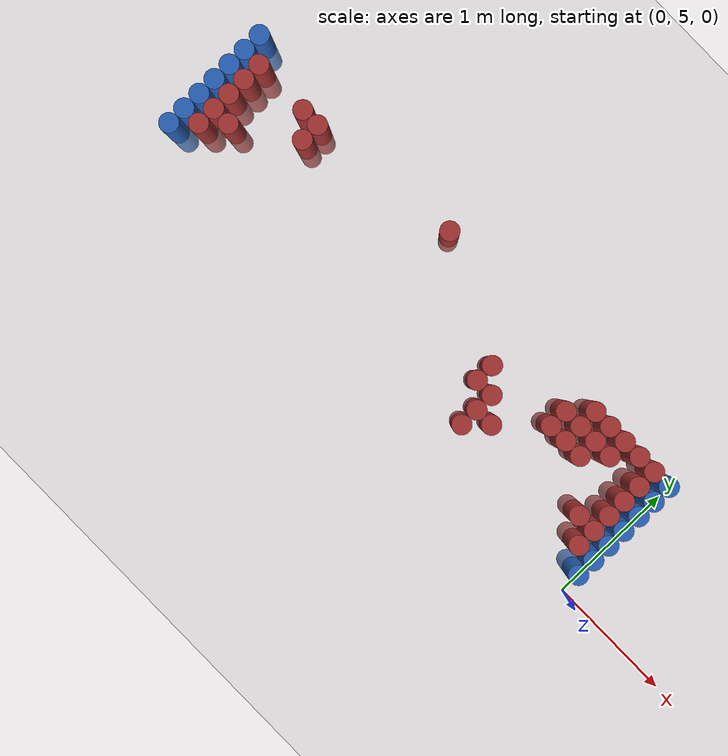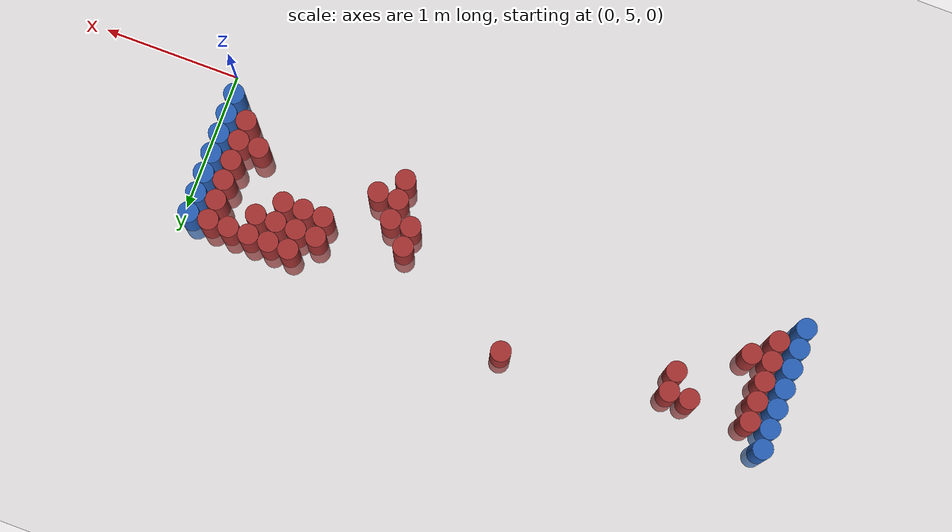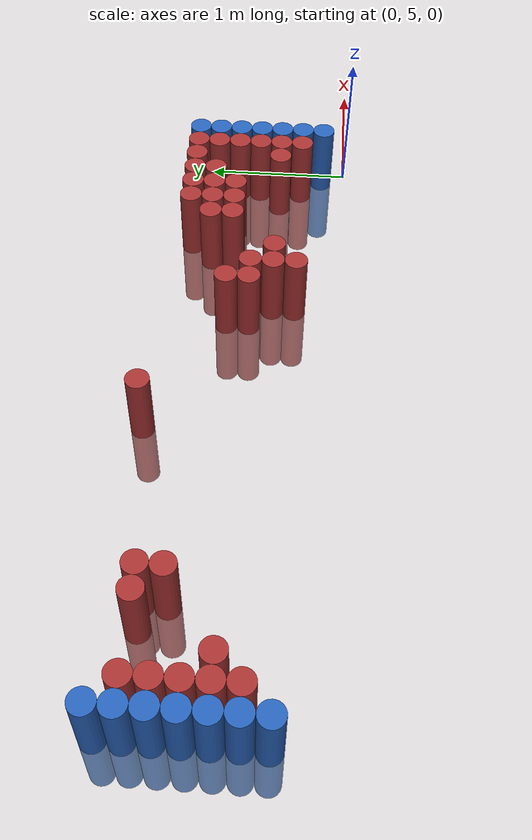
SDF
<sdf version="1.6">
 <world name="default">
  <model name="ground_plane">
   <static>1</static>
   <link name="link">
    <collision name="collision">
     <geometry><plane><normal>0 0 1</normal><size>100 100</size></plane></geometry>
     <surface><friction><ode><mu>100</mu><mu2>50</mu2></ode></friction></surface>
    </collision>
    <visual name="visual">
     <cast_shadows>0</cast_shadows>
     <geometry><plane><normal>0 0 1</normal><size>100 100</size></plane></geometry>
     <material>
      <script><uri>file://media/materials/scripts/gazebo.material</uri><name>Gazebo/Grey</name></script>
     </material>
    </visual>
   </link>
  </model>
  <model name="unit_cylinder_97">
   <static>1</static>
   <pose>-4.425000 5.325000 0.000000 0.000000 0.000000 0.000000</pose>
   <link name="link">
    <inertial>
     <mass>1</mass>
     <inertia><ixx>0.145833</ixx><ixy>0</ixy><ixz>0</ixz><iyy>0.145833</iyy><iyz>0</iyz><izz>0.125</izz></inertia>
    </inertial>
    <collision name="collision">
     <geometry><cylinder><radius>0.075000</radius><length>1</length></cylinder></geometry>
    </collision>
    <visual name="visual">
     <geometry><cylinder><radius>0.075000</radius><length>1</length></cylinder></geometry>
     <material>
      <ambient>0.152000 0.379000 0.720000 1</ambient>
      <diffuse>0.152000 0.379000 0.720000 1</diffuse>
     </material>
     <material>
      <script><name>Gazebo/Grey</name><uri>file://media/materials/scripts/gazebo.material</uri></script>
     </material>
    </visual>
   </link>
  </model>
  <model name="unit_cylinder_98">
   <static>1</static>
   <pose>-4.425000 5.475000 0.000000 0.000000 0.000000 0.000000</pose>
   <link name="link">
    <inertial>
     <mass>1</mass>
     <inertia><ixx>0.145833</ixx><ixy>0</ixy><ixz>0</ixz><iyy>0.145833</iyy><iyz>0</iyz><izz>0.125</izz></inertia>
    </inertial>
    <collision name="collision">
     <geometry><cylinder><radius>0.075000</radius><length>1</length></cylinder></geometry>
    </collision>
    <visual name="visual">
     <geometry><cylinder><radius>0.075000</radius><length>1</length></cylinder></geometry>
     <material>
      <ambient>0.152000 0.379000 0.720000 1</ambient>
      <diffuse>0.152000 0.379000 0.720000 1</diffuse>
     </material>
     <material>
      <script><name>Gazebo/Grey</name><uri>file://media/materials/scripts/gazebo.material</uri></script>
     </material>
    </visual>
   </link>
  </model>
  <model name="unit_cylinder_99">
   <static>1</static>
   <pose>-4.425000 5.625000 0.000000 0.000000 0.000000 0.000000</pose>
   <link name="link">
    <inertial>
     <mass>1</mass>
     <inertia><ixx>0.145833</ixx><ixy>0</ixy><ixz>0</ixz><iyy>0.145833</iyy><iyz>0</iyz><izz>0.125</izz></inertia>
    </inertial>
    <collision name="collision">
     <geometry><cylinder><radius>0.075000</radius><length>1</length></cylinder></geometry>
    </collision>
    <visual name="visual">
     <geometry><cylinder><radius>0.075000</radius><length>1</length></cylinder></geometry>
     <material>
      <ambient>0.152000 0.379000 0.720000 1</ambient>
      <diffuse>0.152000 0.379000 0.720000 1</diffuse>
     </material>
     <material>
      <script><name>Gazebo/Grey</name><uri>file://media/materials/scripts/gazebo.material</uri></script>
     </material>
    </visual>
   </link>
  </model>
  <model name="unit_cylinder_100">
   <static>1</static>
   <pose>-4.425000 5.775000 0.000000 0.000000 0.000000 0.000000</pose>
   <link name="link">
    <inertial>
     <mass>1</mass>
     <inertia><ixx>0.145833</ixx><ixy>0</ixy><ixz>0</ixz><iyy>0.145833</iyy><iyz>0</iyz><izz>0.125</izz></inertia>
    </inertial>
    <collision name="collision">
     <geometry><cylinder><radius>0.075000</radius><length>1</length></cylinder></geometry>
    </collision>
    <visual name="visual">
     <geometry><cylinder><radius>0.075000</radius><length>1</length></cylinder></geometry>
     <material>
      <ambient>0.152000 0.379000 0.720000 1</ambient>
      <diffuse>0.152000 0.379000 0.720000 1</diffuse>
     </material>
     <material>
      <script><name>Gazebo/Grey</name><uri>file://media/materials/scripts/gazebo.material</uri></script>
     </material>
    </visual>
   </link>
  </model>
  <model name="unit_cylinder_101">
   <static>1</static>
   <pose>-4.425000 5.925000 0.000000 0.000000 0.000000 0.000000</pose>
   <link name="link">
    <inertial>
     <mass>1</mass>
     <inertia><ixx>0.145833</ixx><ixy>0</ixy><ixz>0</ixz><iyy>0.145833</iyy><iyz>0</iyz><izz>0.125</izz></inertia>
    </inertial>
    <collision name="collision">
     <geometry><cylinder><radius>0.075000</radius><length>1</length></cylinder></geometry>
    </collision>
    <visual name="visual">
     <geometry><cylinder><radius>0.075000</radius><length>1</length></cylinder></geometry>
     <material>
      <ambient>0.152000 0.379000 0.720000 1</ambient>
      <diffuse>0.152000 0.379000 0.720000 1</diffuse>
     </material>
     <material>
      <script><name>Gazebo/Grey</name><uri>file://media/materials/scripts/gazebo.material</uri></script>
     </material>
    </visual>
   </link>
  </model>
  <model name="unit_cylinder_102">
   <static>1</static>
   <pose>-4.425000 6.075000 0.000000 0.000000 0.000000 0.000000</pose>
   <link name="link">
    <inertial>
     <mass>1</mass>
     <inertia><ixx>0.145833</ixx><ixy>0</ixy><ixz>0</ixz><iyy>0.145833</iyy><iyz>0</iyz><izz>0.125</izz></inertia>
    </inertial>
    <collision name="collision">
     <geometry><cylinder><radius>0.075000</radius><length>1</length></cylinder></geometry>
    </collision>
    <visual name="visual">
     <geometry><cylinder><radius>0.075000</radius><length>1</length></cylinder></geometry>
     <material>
      <ambient>0.152000 0.379000 0.720000 1</ambient>
      <diffuse>0.152000 0.379000 0.720000 1</diffuse>
     </material>
     <material>
      <script><name>Gazebo/Grey</name><uri>file://media/materials/scripts/gazebo.material</uri></script>
     </material>
    </visual>
   </link>
  </model>
  <model name="unit_cylinder_103">
   <static>1</static>
   <pose>-4.425000 6.225000 0.000000 0.000000 0.000000 0.000000</pose>
   <link name="link">
    <inertial>
     <mass>1</mass>
     <inertia><ixx>0.145833</ixx><ixy>0</ixy><ixz>0</ixz><iyy>0.145833</iyy><iyz>0</iyz><izz>0.125</izz></inertia>
    </inertial>
    <collision name="collision">
     <geometry><cylinder><radius>0.075000</radius><length>1</length></cylinder></geometry>
    </collision>
    <visual name="visual">
     <geometry><cylinder><radius>0.075000</radius><length>1</length></cylinder></geometry>
     <material>
      <ambient>0.152000 0.379000 0.720000 1</ambient>
      <diffuse>0.152000 0.379000 0.720000 1</diffuse>
     </material>
     <material>
      <script><name>Gazebo/Grey</name><uri>file://media/materials/scripts/gazebo.material</uri></script>
     </material>
    </visual>
   </link>
  </model>
  <model name="unit_cylinder_126">
   <static>1</static>
   <pose>-4.275000 5.475000 0.000000 0.000000 0.000000 0.000000</pose>
   <link name="link">
    <inertial>
     <mass>1</mass>
     <inertia><ixx>0.145833</ixx><ixy>0</ixy><ixz>0</ixz><iyy>0.145833</iyy><iyz>0</iyz><izz>0.125</izz></inertia>
    </inertial>
    <collision name="collision">
     <geometry><cylinder><radius>0.075000</radius><length>1</length></cylinder></geometry>
    </collision>
    <visual name="visual">
     <geometry><cylinder><radius>0.075000</radius><length>1</length></cylinder></geometry>
     <material>
      <ambient>0.648000 0.192000 0.192000 1</ambient>
      <diffuse>0.648000 0.192000 0.192000 1</diffuse>
     </material>
     <material>
      <script><name>Gazebo/Grey</name><uri>file://media/materials/scripts/gazebo.material</uri></script>
     </material>
    </visual>
   </link>
  </model>
  <model name="unit_cylinder_127">
   <static>1</static>
   <pose>-4.275000 5.625000 0.000000 0.000000 0.000000 0.000000</pose>
   <link name="link">
    <inertial>
     <mass>1</mass>
     <inertia><ixx>0.145833</ixx><ixy>0</ixy><ixz>0</ixz><iyy>0.145833</iyy><iyz>0</iyz><izz>0.125</izz></inertia>
    </inertial>
    <collision name="collision">
     <geometry><cylinder><radius>0.075000</radius><length>1</length></cylinder></geometry>
    </collision>
    <visual name="visual">
     <geometry><cylinder><radius>0.075000</radius><length>1</length></cylinder></geometry>
     <material>
      <ambient>0.648000 0.192000 0.192000 1</ambient>
      <diffuse>0.648000 0.192000 0.192000 1</diffuse>
     </material>
     <material>
      <script><name>Gazebo/Grey</name><uri>file://media/materials/scripts/gazebo.material</uri></script>
     </material>
    </visual>
   </link>
  </model>
  <model name="unit_cylinder_128">
   <static>1</static>
   <pose>-4.275000 5.775000 0.000000 0.000000 0.000000 0.000000</pose>
   <link name="link">
    <inertial>
     <mass>1</mass>
     <inertia><ixx>0.145833</ixx><ixy>0</ixy><ixz>0</ixz><iyy>0.145833</iyy><iyz>0</iyz><izz>0.125</izz></inertia>
    </inertial>
    <collision name="collision">
     <geometry><cylinder><radius>0.075000</radius><length>1</length></cylinder></geometry>
    </collision>
    <visual name="visual">
     <geometry><cylinder><radius>0.075000</radius><length>1</length></cylinder></geometry>
     <material>
      <ambient>0.648000 0.192000 0.192000 1</ambient>
      <diffuse>0.648000 0.192000 0.192000 1</diffuse>
     </material>
     <material>
      <script><name>Gazebo/Grey</name><uri>file://media/materials/scripts/gazebo.material</uri></script>
     </material>
    </visual>
   </link>
  </model>
  <model name="unit_cylinder_129">
   <static>1</static>
   <pose>-4.275000 5.925000 0.000000 0.000000 0.000000 0.000000</pose>
   <link name="link">
    <inertial>
     <mass>1</mass>
     <inertia><ixx>0.145833</ixx><ixy>0</ixy><ixz>0</ixz><iyy>0.145833</iyy><iyz>0</iyz><izz>0.125</izz></inertia>
    </inertial>
    <collision name="collision">
     <geometry><cylinder><radius>0.075000</radius><length>1</length></cylinder></geometry>
    </collision>
    <visual name="visual">
     <geometry><cylinder><radius>0.075000</radius><length>1</length></cylinder></geometry>
     <material>
      <ambient>0.648000 0.192000 0.192000 1</ambient>
      <diffuse>0.648000 0.192000 0.192000 1</diffuse>
     </material>
     <material>
      <script><name>Gazebo/Grey</name><uri>file://media/materials/scripts/gazebo.material</uri></script>
     </material>
    </visual>
   </link>
  </model>
  <model name="unit_cylinder_130">
   <static>1</static>
   <pose>-4.275000 6.075000 0.000000 0.000000 0.000000 0.000000</pose>
   <link name="link">
    <inertial>
     <mass>1</mass>
     <inertia><ixx>0.145833</ixx><ixy>0</ixy><ixz>0</ixz><iyy>0.145833</iyy><iyz>0</iyz><izz>0.125</izz></inertia>
    </inertial>
    <collision name="collision">
     <geometry><cylinder><radius>0.075000</radius><length>1</length></cylinder></geometry>
    </collision>
    <visual name="visual">
     <geometry><cylinder><radius>0.075000</radius><length>1</length></cylinder></geometry>
     <material>
      <ambient>0.648000 0.192000 0.192000 1</ambient>
      <diffuse>0.648000 0.192000 0.192000 1</diffuse>
     </material>
     <material>
      <script><name>Gazebo/Grey</name><uri>file://media/materials/scripts/gazebo.material</uri></script>
     </material>
    </visual>
   </link>
  </model>
  <model name="unit_cylinder_143">
   <static>1</static>
   <pose>-4.125000 5.625000 0.000000 0.000000 0.000000 0.000000</pose>
   <link name="link">
    <inertial>
     <mass>1</mass>
     <inertia><ixx>0.145833</ixx><ixy>0</ixy><ixz>0</ixz><iyy>0.145833</iyy><iyz>0</iyz><izz>0.125</izz></inertia>
    </inertial>
    <collision name="collision">
     <geometry><cylinder><radius>0.075000</radius><length>1</length></cylinder></geometry>
    </collision>
    <visual name="visual">
     <geometry><cylinder><radius>0.075000</radius><length>1</length></cylinder></geometry>
     <material>
      <ambient>0.648000 0.192000 0.192000 1</ambient>
      <diffuse>0.648000 0.192000 0.192000 1</diffuse>
     </material>
     <material>
      <script><name>Gazebo/Grey</name><uri>file://media/materials/scripts/gazebo.material</uri></script>
     </material>
    </visual>
   </link>
  </model>
  <model name="unit_cylinder_153">
   <static>1</static>
   <pose>-3.825000 6.075000 0.000000 0.000000 0.000000 0.000000</pose>
   <link name="link">
    <inertial>
     <mass>1</mass>
     <inertia><ixx>0.145833</ixx><ixy>0</ixy><ixz>0</ixz><iyy>0.145833</iyy><iyz>0</iyz><izz>0.125</izz></inertia>
    </inertial>
    <collision name="collision">
     <geometry><cylinder><radius>0.075000</radius><length>1</length></cylinder></geometry>
    </collision>
    <visual name="visual">
     <geometry><cylinder><radius>0.075000</radius><length>1</length></cylinder></geometry>
     <material>
      <ambient>0.648000 0.192000 0.192000 1</ambient>
      <diffuse>0.648000 0.192000 0.192000 1</diffuse>
     </material>
     <material>
      <script><name>Gazebo/Grey</name><uri>file://media/materials/scripts/gazebo.material</uri></script>
     </material>
    </visual>
   </link>
  </model>
  <model name="unit_cylinder_157">
   <static>1</static>
   <pose>-3.675000 5.925000 0.000000 0.000000 0.000000 0.000000</pose>
   <link name="link">
    <inertial>
     <mass>1</mass>
     <inertia><ixx>0.145833</ixx><ixy>0</ixy><ixz>0</ixz><iyy>0.145833</iyy><iyz>0</iyz><izz>0.125</izz></inertia>
    </inertial>
    <collision name="collision">
     <geometry><cylinder><radius>0.075000</radius><length>1</length></cylinder></geometry>
    </collision>
    <visual name="visual">
     <geometry><cylinder><radius>0.075000</radius><length>1</length></cylinder></geometry>
     <material>
      <ambient>0.648000 0.192000 0.192000 1</ambient>
      <diffuse>0.648000 0.192000 0.192000 1</diffuse>
     </material>
     <material>
      <script><name>Gazebo/Grey</name><uri>file://media/materials/scripts/gazebo.material</uri></script>
     </material>
    </visual>
   </link>
  </model>
  <model name="unit_cylinder_158">
   <static>1</static>
   <pose>-3.675000 6.075000 0.000000 0.000000 0.000000 0.000000</pose>
   <link name="link">
    <inertial>
     <mass>1</mass>
     <inertia><ixx>0.145833</ixx><ixy>0</ixy><ixz>0</ixz><iyy>0.145833</iyy><iyz>0</iyz><izz>0.125</izz></inertia>
    </inertial>
    <collision name="collision">
     <geometry><cylinder><radius>0.075000</radius><length>1</length></cylinder></geometry>
    </collision>
    <visual name="visual">
     <geometry><cylinder><radius>0.075000</radius><length>1</length></cylinder></geometry>
     <material>
      <ambient>0.648000 0.192000 0.192000 1</ambient>
      <diffuse>0.648000 0.192000 0.192000 1</diffuse>
     </material>
     <material>
      <script><name>Gazebo/Grey</name><uri>file://media/materials/scripts/gazebo.material</uri></script>
     </material>
    </visual>
   </link>
  </model>
  <model name="unit_cylinder_170">
   <static>1</static>
   <pose>-2.475000 6.225000 0.000000 0.000000 0.000000 0.000000</pose>
   <link name="link">
    <inertial>
     <mass>1</mass>
     <inertia><ixx>0.145833</ixx><ixy>0</ixy><ixz>0</ixz><iyy>0.145833</iyy><iyz>0</iyz><izz>0.125</izz></inertia>
    </inertial>
    <collision name="collision">
     <geometry><cylinder><radius>0.075000</radius><length>1</length></cylinder></geometry>
    </collision>
    <visual name="visual">
     <geometry><cylinder><radius>0.075000</radius><length>1</length></cylinder></geometry>
     <material>
      <ambient>0.648000 0.192000 0.192000 1</ambient>
      <diffuse>0.648000 0.192000 0.192000 1</diffuse>
     </material>
     <material>
      <script><name>Gazebo/Grey</name><uri>file://media/materials/scripts/gazebo.material</uri></script>
     </material>
    </visual>
   </link>
  </model>
  <model name="unit_cylinder_187">
   <static>1</static>
   <pose>-1.575000 5.625000 0.000000 0.000000 0.000000 0.000000</pose>
   <link name="link">
    <inertial>
     <mass>1</mass>
     <inertia><ixx>0.145833</ixx><ixy>0</ixy><ixz>0</ixz><iyy>0.145833</iyy><iyz>0</iyz><izz>0.125</izz></inertia>
    </inertial>
    <collision name="collision">
     <geometry><cylinder><radius>0.075000</radius><length>1</length></cylinder></geometry>
    </collision>
    <visual name="visual">
     <geometry><cylinder><radius>0.075000</radius><length>1</length></cylinder></geometry>
     <material>
      <ambient>0.648000 0.192000 0.192000 1</ambient>
      <diffuse>0.648000 0.192000 0.192000 1</diffuse>
     </material>
     <material>
      <script><name>Gazebo/Grey</name><uri>file://media/materials/scripts/gazebo.material</uri></script>
     </material>
    </visual>
   </link>
  </model>
  <model name="unit_cylinder_188">
   <static>1</static>
   <pose>-1.575000 5.775000 0.000000 0.000000 0.000000 0.000000</pose>
   <link name="link">
    <inertial>
     <mass>1</mass>
     <inertia><ixx>0.145833</ixx><ixy>0</ixy><ixz>0</ixz><iyy>0.145833</iyy><iyz>0</iyz><izz>0.125</izz></inertia>
    </inertial>
    <collision name="collision">
     <geometry><cylinder><radius>0.075000</radius><length>1</length></cylinder></geometry>
    </collision>
    <visual name="visual">
     <geometry><cylinder><radius>0.075000</radius><length>1</length></cylinder></geometry>
     <material>
      <ambient>0.648000 0.192000 0.192000 1</ambient>
      <diffuse>0.648000 0.192000 0.192000 1</diffuse>
     </material>
     <material>
      <script><name>Gazebo/Grey</name><uri>file://media/materials/scripts/gazebo.material</uri></script>
     </material>
    </visual>
   </link>
  </model>
  <model name="unit_cylinder_191">
   <static>1</static>
   <pose>-1.425000 5.325000 0.000000 0.000000 0.000000 0.000000</pose>
   <link name="link">
    <inertial>
     <mass>1</mass>
     <inertia><ixx>0.145833</ixx><ixy>0</ixy><ixz>0</ixz><iyy>0.145833</iyy><iyz>0</iyz><izz>0.125</izz></inertia>
    </inertial>
    <collision name="collision">
     <geometry><cylinder><radius>0.075000</radius><length>1</length></cylinder></geometry>
    </collision>
    <visual name="visual">
     <geometry><cylinder><radius>0.075000</radius><length>1</length></cylinder></geometry>
     <material>
      <ambient>0.648000 0.192000 0.192000 1</ambient>
      <diffuse>0.648000 0.192000 0.192000 1</diffuse>
     </material>
     <material>
      <script><name>Gazebo/Grey</name><uri>file://media/materials/scripts/gazebo.material</uri></script>
     </material>
    </visual>
   </link>
  </model>
  <model name="unit_cylinder_192">
   <static>1</static>
   <pose>-1.425000 5.475000 0.000000 0.000000 0.000000 0.000000</pose>
   <link name="link">
    <inertial>
     <mass>1</mass>
     <inertia><ixx>0.145833</ixx><ixy>0</ixy><ixz>0</ixz><iyy>0.145833</iyy><iyz>0</iyz><izz>0.125</izz></inertia>
    </inertial>
    <collision name="collision">
     <geometry><cylinder><radius>0.075000</radius><length>1</length></cylinder></geometry>
    </collision>
    <visual name="visual">
     <geometry><cylinder><radius>0.075000</radius><length>1</length></cylinder></geometry>
     <material>
      <ambient>0.648000 0.192000 0.192000 1</ambient>
      <diffuse>0.648000 0.192000 0.192000 1</diffuse>
     </material>
     <material>
      <script><name>Gazebo/Grey</name><uri>file://media/materials/scripts/gazebo.material</uri></script>
     </material>
    </visual>
   </link>
  </model>
  <model name="unit_cylinder_193">
   <static>1</static>
   <pose>-1.425000 5.625000 0.000000 0.000000 0.000000 0.000000</pose>
   <link name="link">
    <inertial>
     <mass>1</mass>
     <inertia><ixx>0.145833</ixx><ixy>0</ixy><ixz>0</ixz><iyy>0.145833</iyy><iyz>0</iyz><izz>0.125</izz></inertia>
    </inertial>
    <collision name="collision">
     <geometry><cylinder><radius>0.075000</radius><length>1</length></cylinder></geometry>
    </collision>
    <visual name="visual">
     <geometry><cylinder><radius>0.075000</radius><length>1</length></cylinder></geometry>
     <material>
      <ambient>0.648000 0.192000 0.192000 1</ambient>
      <diffuse>0.648000 0.192000 0.192000 1</diffuse>
     </material>
     <material>
      <script><name>Gazebo/Grey</name><uri>file://media/materials/scripts/gazebo.material</uri></script>
     </material>
    </visual>
   </link>
  </model>
  <model name="unit_cylinder_196">
   <static>1</static>
   <pose>-1.275000 5.475000 0.000000 0.000000 0.000000 0.000000</pose>
   <link name="link">
    <inertial>
     <mass>1</mass>
     <inertia><ixx>0.145833</ixx><ixy>0</ixy><ixz>0</ixz><iyy>0.145833</iyy><iyz>0</iyz><izz>0.125</izz></inertia>
    </inertial>
    <collision name="collision">
     <geometry><cylinder><radius>0.075000</radius><length>1</length></cylinder></geometry>
    </collision>
    <visual name="visual">
     <geometry><cylinder><radius>0.075000</radius><length>1</length></cylinder></geometry>
     <material>
      <ambient>0.648000 0.192000 0.192000 1</ambient>
      <diffuse>0.648000 0.192000 0.192000 1</diffuse>
     </material>
     <material>
      <script><name>Gazebo/Grey</name><uri>file://media/materials/scripts/gazebo.material</uri></script>
     </material>
    </visual>
   </link>
  </model>
  <model name="unit_cylinder_198">
   <static>1</static>
   <pose>-0.975000 5.775000 0.000000 0.000000 0.000000 0.000000</pose>
   <link name="link">
    <inertial>
     <mass>1</mass>
     <inertia><ixx>0.145833</ixx><ixy>0</ixy><ixz>0</ixz><iyy>0.145833</iyy><iyz>0</iyz><izz>0.125</izz></inertia>
    </inertial>
    <collision name="collision">
     <geometry><cylinder><radius>0.075000</radius><length>1</length></cylinder></geometry>
    </collision>
    <visual name="visual">
     <geometry><cylinder><radius>0.075000</radius><length>1</length></cylinder></geometry>
     <material>
      <ambient>0.648000 0.192000 0.192000 1</ambient>
      <diffuse>0.648000 0.192000 0.192000 1</diffuse>
     </material>
     <material>
      <script><name>Gazebo/Grey</name><uri>file://media/materials/scripts/gazebo.material</uri></script>
     </material>
    </visual>
   </link>
  </model>
  <model name="unit_cylinder_199">
   <static>1</static>
   <pose>-0.975000 5.925000 0.000000 0.000000 0.000000 0.000000</pose>
   <link name="link">
    <inertial>
     <mass>1</mass>
     <inertia><ixx>0.145833</ixx><ixy>0</ixy><ixz>0</ixz><iyy>0.145833</iyy><iyz>0</iyz><izz>0.125</izz></inertia>
    </inertial>
    <collision name="collision">
     <geometry><cylinder><radius>0.075000</radius><length>1</length></cylinder></geometry>
    </collision>
    <visual name="visual">
     <geometry><cylinder><radius>0.075000</radius><length>1</length></cylinder></geometry>
     <material>
      <ambient>0.648000 0.192000 0.192000 1</ambient>
      <diffuse>0.648000 0.192000 0.192000 1</diffuse>
     </material>
     <material>
      <script><name>Gazebo/Grey</name><uri>file://media/materials/scripts/gazebo.material</uri></script>
     </material>
    </visual>
   </link>
  </model>
  <model name="unit_cylinder_205">
   <static>1</static>
   <pose>-0.825000 5.775000 0.000000 0.000000 0.000000 0.000000</pose>
   <link name="link">
    <inertial>
     <mass>1</mass>
     <inertia><ixx>0.145833</ixx><ixy>0</ixy><ixz>0</ixz><iyy>0.145833</iyy><iyz>0</iyz><izz>0.125</izz></inertia>
    </inertial>
    <collision name="collision">
     <geometry><cylinder><radius>0.075000</radius><length>1</length></cylinder></geometry>
    </collision>
    <visual name="visual">
     <geometry><cylinder><radius>0.075000</radius><length>1</length></cylinder></geometry>
     <material>
      <ambient>0.648000 0.192000 0.192000 1</ambient>
      <diffuse>0.648000 0.192000 0.192000 1</diffuse>
     </material>
     <material>
      <script><name>Gazebo/Grey</name><uri>file://media/materials/scripts/gazebo.material</uri></script>
     </material>
    </visual>
   </link>
  </model>
  <model name="unit_cylinder_206">
   <static>1</static>
   <pose>-0.825000 5.925000 0.000000 0.000000 0.000000 0.000000</pose>
   <link name="link">
    <inertial>
     <mass>1</mass>
     <inertia><ixx>0.145833</ixx><ixy>0</ixy><ixz>0</ixz><iyy>0.145833</iyy><iyz>0</iyz><izz>0.125</izz></inertia>
    </inertial>
    <collision name="collision">
     <geometry><cylinder><radius>0.075000</radius><length>1</length></cylinder></geometry>
    </collision>
    <visual name="visual">
     <geometry><cylinder><radius>0.075000</radius><length>1</length></cylinder></geometry>
     <material>
      <ambient>0.648000 0.192000 0.192000 1</ambient>
      <diffuse>0.648000 0.192000 0.192000 1</diffuse>
     </material>
     <material>
      <script><name>Gazebo/Grey</name><uri>file://media/materials/scripts/gazebo.material</uri></script>
     </material>
    </visual>
   </link>
  </model>
  <model name="unit_cylinder_207">
   <static>1</static>
   <pose>-0.825000 6.075000 0.000000 0.000000 0.000000 0.000000</pose>
   <link name="link">
    <inertial>
     <mass>1</mass>
     <inertia><ixx>0.145833</ixx><ixy>0</ixy><ixz>0</ixz><iyy>0.145833</iyy><iyz>0</iyz><izz>0.125</izz></inertia>
    </inertial>
    <collision name="collision">
     <geometry><cylinder><radius>0.075000</radius><length>1</length></cylinder></geometry>
    </collision>
    <visual name="visual">
     <geometry><cylinder><radius>0.075000</radius><length>1</length></cylinder></geometry>
     <material>
      <ambient>0.648000 0.192000 0.192000 1</ambient>
      <diffuse>0.648000 0.192000 0.192000 1</diffuse>
     </material>
     <material>
      <script><name>Gazebo/Grey</name><uri>file://media/materials/scripts/gazebo.material</uri></script>
     </material>
    </visual>
   </link>
  </model>
  <model name="unit_cylinder_215">
   <static>1</static>
   <pose>-0.675000 5.775000 0.000000 0.000000 0.000000 0.000000</pose>
   <link name="link">
    <inertial>
     <mass>1</mass>
     <inertia><ixx>0.145833</ixx><ixy>0</ixy><ixz>0</ixz><iyy>0.145833</iyy><iyz>0</iyz><izz>0.125</izz></inertia>
    </inertial>
    <collision name="collision">
     <geometry><cylinder><radius>0.075000</radius><length>1</length></cylinder></geometry>
    </collision>
    <visual name="visual">
     <geometry><cylinder><radius>0.075000</radius><length>1</length></cylinder></geometry>
     <material>
      <ambient>0.648000 0.192000 0.192000 1</ambient>
      <diffuse>0.648000 0.192000 0.192000 1</diffuse>
     </material>
     <material>
      <script><name>Gazebo/Grey</name><uri>file://media/materials/scripts/gazebo.material</uri></script>
     </material>
    </visual>
   </link>
  </model>
  <model name="unit_cylinder_216">
   <static>1</static>
   <pose>-0.675000 5.925000 0.000000 0.000000 0.000000 0.000000</pose>
   <link name="link">
    <inertial>
     <mass>1</mass>
     <inertia><ixx>0.145833</ixx><ixy>0</ixy><ixz>0</ixz><iyy>0.145833</iyy><iyz>0</iyz><izz>0.125</izz></inertia>
    </inertial>
    <collision name="collision">
     <geometry><cylinder><radius>0.075000</radius><length>1</length></cylinder></geometry>
    </collision>
    <visual name="visual">
     <geometry><cylinder><radius>0.075000</radius><length>1</length></cylinder></geometry>
     <material>
      <ambient>0.648000 0.192000 0.192000 1</ambient>
      <diffuse>0.648000 0.192000 0.192000 1</diffuse>
     </material>
     <material>
      <script><name>Gazebo/Grey</name><uri>file://media/materials/scripts/gazebo.material</uri></script>
     </material>
    </visual>
   </link>
  </model>
  <model name="unit_cylinder_217">
   <static>1</static>
   <pose>-0.675000 6.075000 0.000000 0.000000 0.000000 0.000000</pose>
   <link name="link">
    <inertial>
     <mass>1</mass>
     <inertia><ixx>0.145833</ixx><ixy>0</ixy><ixz>0</ixz><iyy>0.145833</iyy><iyz>0</iyz><izz>0.125</izz></inertia>
    </inertial>
    <collision name="collision">
     <geometry><cylinder><radius>0.075000</radius><length>1</length></cylinder></geometry>
    </collision>
    <visual name="visual">
     <geometry><cylinder><radius>0.075000</radius><length>1</length></cylinder></geometry>
     <material>
      <ambient>0.648000 0.192000 0.192000 1</ambient>
      <diffuse>0.648000 0.192000 0.192000 1</diffuse>
     </material>
     <material>
      <script><name>Gazebo/Grey</name><uri>file://media/materials/scripts/gazebo.material</uri></script>
     </material>
    </visual>
   </link>
  </model>
  <model name="unit_cylinder_224">
   <static>1</static>
   <pose>-0.525000 5.925000 0.000000 0.000000 0.000000 0.000000</pose>
   <link name="link">
    <inertial>
     <mass>1</mass>
     <inertia><ixx>0.145833</ixx><ixy>0</ixy><ixz>0</ixz><iyy>0.145833</iyy><iyz>0</iyz><izz>0.125</izz></inertia>
    </inertial>
    <collision name="collision">
     <geometry><cylinder><radius>0.075000</radius><length>1</length></cylinder></geometry>
    </collision>
    <visual name="visual">
     <geometry><cylinder><radius>0.075000</radius><length>1</length></cylinder></geometry>
     <material>
      <ambient>0.648000 0.192000 0.192000 1</ambient>
      <diffuse>0.648000 0.192000 0.192000 1</diffuse>
     </material>
     <material>
      <script><name>Gazebo/Grey</name><uri>file://media/materials/scripts/gazebo.material</uri></script>
     </material>
    </visual>
   </link>
  </model>
  <model name="unit_cylinder_225">
   <static>1</static>
   <pose>-0.525000 6.075000 0.000000 0.000000 0.000000 0.000000</pose>
   <link name="link">
    <inertial>
     <mass>1</mass>
     <inertia><ixx>0.145833</ixx><ixy>0</ixy><ixz>0</ixz><iyy>0.145833</iyy><iyz>0</iyz><izz>0.125</izz></inertia>
    </inertial>
    <collision name="collision">
     <geometry><cylinder><radius>0.075000</radius><length>1</length></cylinder></geometry>
    </collision>
    <visual name="visual">
     <geometry><cylinder><radius>0.075000</radius><length>1</length></cylinder></geometry>
     <material>
      <ambient>0.648000 0.192000 0.192000 1</ambient>
      <diffuse>0.648000 0.192000 0.192000 1</diffuse>
     </material>
     <material>
      <script><name>Gazebo/Grey</name><uri>file://media/materials/scripts/gazebo.material</uri></script>
     </material>
    </visual>
   </link>
  </model>
  <model name="unit_cylinder_233">
   <static>1</static>
   <pose>-0.375000 5.475000 0.000000 0.000000 0.000000 0.000000</pose>
   <link name="link">
    <inertial>
     <mass>1</mass>
     <inertia><ixx>0.145833</ixx><ixy>0</ixy><ixz>0</ixz><iyy>0.145833</iyy><iyz>0</iyz><izz>0.125</izz></inertia>
    </inertial>
    <collision name="collision">
     <geometry><cylinder><radius>0.075000</radius><length>1</length></cylinder></geometry>
    </collision>
    <visual name="visual">
     <geometry><cylinder><radius>0.075000</radius><length>1</length></cylinder></geometry>
     <material>
      <ambient>0.648000 0.192000 0.192000 1</ambient>
      <diffuse>0.648000 0.192000 0.192000 1</diffuse>
     </material>
     <material>
      <script><name>Gazebo/Grey</name><uri>file://media/materials/scripts/gazebo.material</uri></script>
     </material>
    </visual>
   </link>
  </model>
  <model name="unit_cylinder_234">
   <static>1</static>
   <pose>-0.375000 6.075000 0.000000 0.000000 0.000000 0.000000</pose>
   <link name="link">
    <inertial>
     <mass>1</mass>
     <inertia><ixx>0.145833</ixx><ixy>0</ixy><ixz>0</ixz><iyy>0.145833</iyy><iyz>0</iyz><izz>0.125</izz></inertia>
    </inertial>
    <collision name="collision">
     <geometry><cylinder><radius>0.075000</radius><length>1</length></cylinder></geometry>
    </collision>
    <visual name="visual">
     <geometry><cylinder><radius>0.075000</radius><length>1</length></cylinder></geometry>
     <material>
      <ambient>0.648000 0.192000 0.192000 1</ambient>
      <diffuse>0.648000 0.192000 0.192000 1</diffuse>
     </material>
     <material>
      <script><name>Gazebo/Grey</name><uri>file://media/materials/scripts/gazebo.material</uri></script>
     </material>
    </visual>
   </link>
  </model>
  <model name="unit_cylinder_239">
   <static>1</static>
   <pose>-0.225000 5.325000 0.000000 0.000000 0.000000 0.000000</pose>
   <link name="link">
    <inertial>
     <mass>1</mass>
     <inertia><ixx>0.145833</ixx><ixy>0</ixy><ixz>0</ixz><iyy>0.145833</iyy><iyz>0</iyz><izz>0.125</izz></inertia>
    </inertial>
    <collision name="collision">
     <geometry><cylinder><radius>0.075000</radius><length>1</length></cylinder></geometry>
    </collision>
    <visual name="visual">
     <geometry><cylinder><radius>0.075000</radius><length>1</length></cylinder></geometry>
     <material>
      <ambient>0.648000 0.192000 0.192000 1</ambient>
      <diffuse>0.648000 0.192000 0.192000 1</diffuse>
     </material>
     <material>
      <script><name>Gazebo/Grey</name><uri>file://media/materials/scripts/gazebo.material</uri></script>
     </material>
    </visual>
   </link>
  </model>
  <model name="unit_cylinder_240">
   <static>1</static>
   <pose>-0.225000 5.475000 0.000000 0.000000 0.000000 0.000000</pose>
   <link name="link">
    <inertial>
     <mass>1</mass>
     <inertia><ixx>0.145833</ixx><ixy>0</ixy><ixz>0</ixz><iyy>0.145833</iyy><iyz>0</iyz><izz>0.125</izz></inertia>
    </inertial>
    <collision name="collision">
     <geometry><cylinder><radius>0.075000</radius><length>1</length></cylinder></geometry>
    </collision>
    <visual name="visual">
     <geometry><cylinder><radius>0.075000</radius><length>1</length></cylinder></geometry>
     <material>
      <ambient>0.648000 0.192000 0.192000 1</ambient>
      <diffuse>0.648000 0.192000 0.192000 1</diffuse>
     </material>
     <material>
      <script><name>Gazebo/Grey</name><uri>file://media/materials/scripts/gazebo.material</uri></script>
     </material>
    </visual>
   </link>
  </model>
  <model name="unit_cylinder_241">
   <static>1</static>
   <pose>-0.225000 5.625000 0.000000 0.000000 0.000000 0.000000</pose>
   <link name="link">
    <inertial>
     <mass>1</mass>
     <inertia><ixx>0.145833</ixx><ixy>0</ixy><ixz>0</ixz><iyy>0.145833</iyy><iyz>0</iyz><izz>0.125</izz></inertia>
    </inertial>
    <collision name="collision">
     <geometry><cylinder><radius>0.075000</radius><length>1</length></cylinder></geometry>
    </collision>
    <visual name="visual">
     <geometry><cylinder><radius>0.075000</radius><length>1</length></cylinder></geometry>
     <material>
      <ambient>0.648000 0.192000 0.192000 1</ambient>
      <diffuse>0.648000 0.192000 0.192000 1</diffuse>
     </material>
     <material>
      <script><name>Gazebo/Grey</name><uri>file://media/materials/scripts/gazebo.material</uri></script>
     </material>
    </visual>
   </link>
  </model>
  <model name="unit_cylinder_242">
   <static>1</static>
   <pose>-0.225000 5.775000 0.000000 0.000000 0.000000 0.000000</pose>
   <link name="link">
    <inertial>
     <mass>1</mass>
     <inertia><ixx>0.145833</ixx><ixy>0</ixy><ixz>0</ixz><iyy>0.145833</iyy><iyz>0</iyz><izz>0.125</izz></inertia>
    </inertial>
    <collision name="collision">
     <geometry><cylinder><radius>0.075000</radius><length>1</length></cylinder></geometry>
    </collision>
    <visual name="visual">
     <geometry><cylinder><radius>0.075000</radius><length>1</length></cylinder></geometry>
     <material>
      <ambient>0.648000 0.192000 0.192000 1</ambient>
      <diffuse>0.648000 0.192000 0.192000 1</diffuse>
     </material>
     <material>
      <script><name>Gazebo/Grey</name><uri>file://media/materials/scripts/gazebo.material</uri></script>
     </material>
    </visual>
   </link>
  </model>
  <model name="unit_cylinder_243">
   <static>1</static>
   <pose>-0.225000 5.925000 0.000000 0.000000 0.000000 0.000000</pose>
   <link name="link">
    <inertial>
     <mass>1</mass>
     <inertia><ixx>0.145833</ixx><ixy>0</ixy><ixz>0</ixz><iyy>0.145833</iyy><iyz>0</iyz><izz>0.125</izz></inertia>
    </inertial>
    <collision name="collision">
     <geometry><cylinder><radius>0.075000</radius><length>1</length></cylinder></geometry>
    </collision>
    <visual name="visual">
     <geometry><cylinder><radius>0.075000</radius><length>1</length></cylinder></geometry>
     <material>
      <ambient>0.648000 0.192000 0.192000 1</ambient>
      <diffuse>0.648000 0.192000 0.192000 1</diffuse>
     </material>
     <material>
      <script><name>Gazebo/Grey</name><uri>file://media/materials/scripts/gazebo.material</uri></script>
     </material>
    </visual>
   </link>
  </model>
  <model name="unit_cylinder_244">
   <static>1</static>
   <pose>-0.225000 6.075000 0.000000 0.000000 0.000000 0.000000</pose>
   <link name="link">
    <inertial>
     <mass>1</mass>
     <inertia><ixx>0.145833</ixx><ixy>0</ixy><ixz>0</ixz><iyy>0.145833</iyy><iyz>0</iyz><izz>0.125</izz></inertia>
    </inertial>
    <collision name="collision">
     <geometry><cylinder><radius>0.075000</radius><length>1</length></cylinder></geometry>
    </collision>
    <visual name="visual">
     <geometry><cylinder><radius>0.075000</radius><length>1</length></cylinder></geometry>
     <material>
      <ambient>0.648000 0.192000 0.192000 1</ambient>
      <diffuse>0.648000 0.192000 0.192000 1</diffuse>
     </material>
     <material>
      <script><name>Gazebo/Grey</name><uri>file://media/materials/scripts/gazebo.material</uri></script>
     </material>
    </visual>
   </link>
  </model>
  <model name="unit_cylinder_260">
   <static>1</static>
   <pose>-0.075000 5.175000 0.000000 0.000000 0.000000 0.000000</pose>
   <link name="link">
    <inertial>
     <mass>1</mass>
     <inertia><ixx>0.145833</ixx><ixy>0</ixy><ixz>0</ixz><iyy>0.145833</iyy><iyz>0</iyz><izz>0.125</izz></inertia>
    </inertial>
    <collision name="collision">
     <geometry><cylinder><radius>0.075000</radius><length>1</length></cylinder></geometry>
    </collision>
    <visual name="visual">
     <geometry><cylinder><radius>0.075000</radius><length>1</length></cylinder></geometry>
     <material>
      <ambient>0.152000 0.379000 0.720000 1</ambient>
      <diffuse>0.152000 0.379000 0.720000 1</diffuse>
     </material>
     <material>
      <script><name>Gazebo/Grey</name><uri>file://media/materials/scripts/gazebo.material</uri></script>
     </material>
    </visual>
   </link>
  </model>
  <model name="unit_cylinder_261">
   <static>1</static>
   <pose>-0.075000 5.325000 0.000000 0.000000 0.000000 0.000000</pose>
   <link name="link">
    <inertial>
     <mass>1</mass>
     <inertia><ixx>0.145833</ixx><ixy>0</ixy><ixz>0</ixz><iyy>0.145833</iyy><iyz>0</iyz><izz>0.125</izz></inertia>
    </inertial>
    <collision name="collision">
     <geometry><cylinder><radius>0.075000</radius><length>1</length></cylinder></geometry>
    </collision>
    <visual name="visual">
     <geometry><cylinder><radius>0.075000</radius><length>1</length></cylinder></geometry>
     <material>
      <ambient>0.152000 0.379000 0.720000 1</ambient>
      <diffuse>0.152000 0.379000 0.720000 1</diffuse>
     </material>
     <material>
      <script><name>Gazebo/Grey</name><uri>file://media/materials/scripts/gazebo.material</uri></script>
     </material>
    </visual>
   </link>
  </model>
  <model name="unit_cylinder_262">
   <static>1</static>
   <pose>-0.075000 5.475000 0.000000 0.000000 0.000000 0.000000</pose>
   <link name="link">
    <inertial>
     <mass>1</mass>
     <inertia><ixx>0.145833</ixx><ixy>0</ixy><ixz>0</ixz><iyy>0.145833</iyy><iyz>0</iyz><izz>0.125</izz></inertia>
    </inertial>
    <collision name="collision">
     <geometry><cylinder><radius>0.075000</radius><length>1</length></cylinder></geometry>
    </collision>
    <visual name="visual">
     <geometry><cylinder><radius>0.075000</radius><length>1</length></cylinder></geometry>
     <material>
      <ambient>0.152000 0.379000 0.720000 1</ambient>
      <diffuse>0.152000 0.379000 0.720000 1</diffuse>
     </material>
     <material>
      <script><name>Gazebo/Grey</name><uri>file://media/materials/scripts/gazebo.material</uri></script>
     </material>
    </visual>
   </link>
  </model>
  <model name="unit_cylinder_263">
   <static>1</static>
   <pose>-0.075000 5.625000 0.000000 0.000000 0.000000 0.000000</pose>
   <link name="link">
    <inertial>
     <mass>1</mass>
     <inertia><ixx>0.145833</ixx><ixy>0</ixy><ixz>0</ixz><iyy>0.145833</iyy><iyz>0</iyz><izz>0.125</izz></inertia>
    </inertial>
    <collision name="collision">
     <geometry><cylinder><radius>0.075000</radius><length>1</length></cylinder></geometry>
    </collision>
    <visual name="visual">
     <geometry><cylinder><radius>0.075000</radius><length>1</length></cylinder></geometry>
     <material>
      <ambient>0.152000 0.379000 0.720000 1</ambient>
      <diffuse>0.152000 0.379000 0.720000 1</diffuse>
     </material>
     <material>
      <script><name>Gazebo/Grey</name><uri>file://media/materials/scripts/gazebo.material</uri></script>
     </material>
    </visual>
   </link>
  </model>
  <model name="unit_cylinder_264">
   <static>1</static>
   <pose>-0.075000 5.775000 0.000000 0.000000 0.000000 0.000000</pose>
   <link name="link">
    <inertial>
     <mass>1</mass>
     <inertia><ixx>0.145833</ixx><ixy>0</ixy><ixz>0</ixz><iyy>0.145833</iyy><iyz>0</iyz><izz>0.125</izz></inertia>
    </inertial>
    <collision name="collision">
     <geometry><cylinder><radius>0.075000</radius><length>1</length></cylinder></geometry>
    </collision>
    <visual name="visual">
     <geometry><cylinder><radius>0.075000</radius><length>1</length></cylinder></geometry>
     <material>
      <ambient>0.152000 0.379000 0.720000 1</ambient>
      <diffuse>0.152000 0.379000 0.720000 1</diffuse>
     </material>
     <material>
      <script><name>Gazebo/Grey</name><uri>file://media/materials/scripts/gazebo.material</uri></script>
     </material>
    </visual>
   </link>
  </model>
  <model name="unit_cylinder_265">
   <static>1</static>
   <pose>-0.075000 5.925000 0.000000 0.000000 0.000000 0.000000</pose>
   <link name="link">
    <inertial>
     <mass>1</mass>
     <inertia><ixx>0.145833</ixx><ixy>0</ixy><ixz>0</ixz><iyy>0.145833</iyy><iyz>0</iyz><izz>0.125</izz></inertia>
    </inertial>
    <collision name="collision">
     <geometry><cylinder><radius>0.075000</radius><length>1</length></cylinder></geometry>
    </collision>
    <visual name="visual">
     <geometry><cylinder><radius>0.075000</radius><length>1</length></cylinder></geometry>
     <material>
      <ambient>0.152000 0.379000 0.720000 1</ambient>
      <diffuse>0.152000 0.379000 0.720000 1</diffuse>
     </material>
     <material>
      <script><name>Gazebo/Grey</name><uri>file://media/materials/scripts/gazebo.material</uri></script>
     </material>
    </visual>
   </link>
  </model>
  <model name="unit_cylinder_266">
   <static>1</static>
   <pose>-0.075000 6.075000 0.000000 0.000000 0.000000 0.000000</pose>
   <link name="link">
    <inertial>
     <mass>1</mass>
     <inertia><ixx>0.145833</ixx><ixy>0</ixy><ixz>0</ixz><iyy>0.145833</iyy><iyz>0</iyz><izz>0.125</izz></inertia>
    </inertial>
    <collision name="collision">
     <geometry><cylinder><radius>0.075000</radius><length>1</length></cylinder></geometry>
    </collision>
    <visual name="visual">
     <geometry><cylinder><radius>0.075000</radius><length>1</length></cylinder></geometry>
     <material>
      <ambient>0.152000 0.379000 0.720000 1</ambient>
      <diffuse>0.152000 0.379000 0.720000 1</diffuse>
     </material>
     <material>
      <script><name>Gazebo/Grey</name><uri>file://media/materials/scripts/gazebo.material</uri></script>
     </material>
    </visual>
   </link>
  </model>
 </world>
</sdf>
